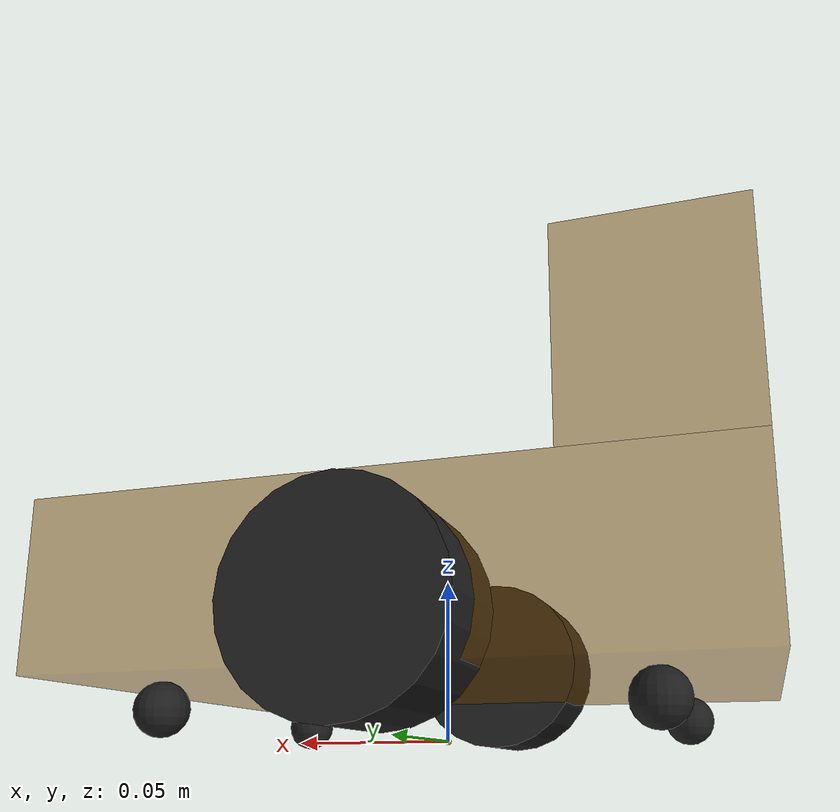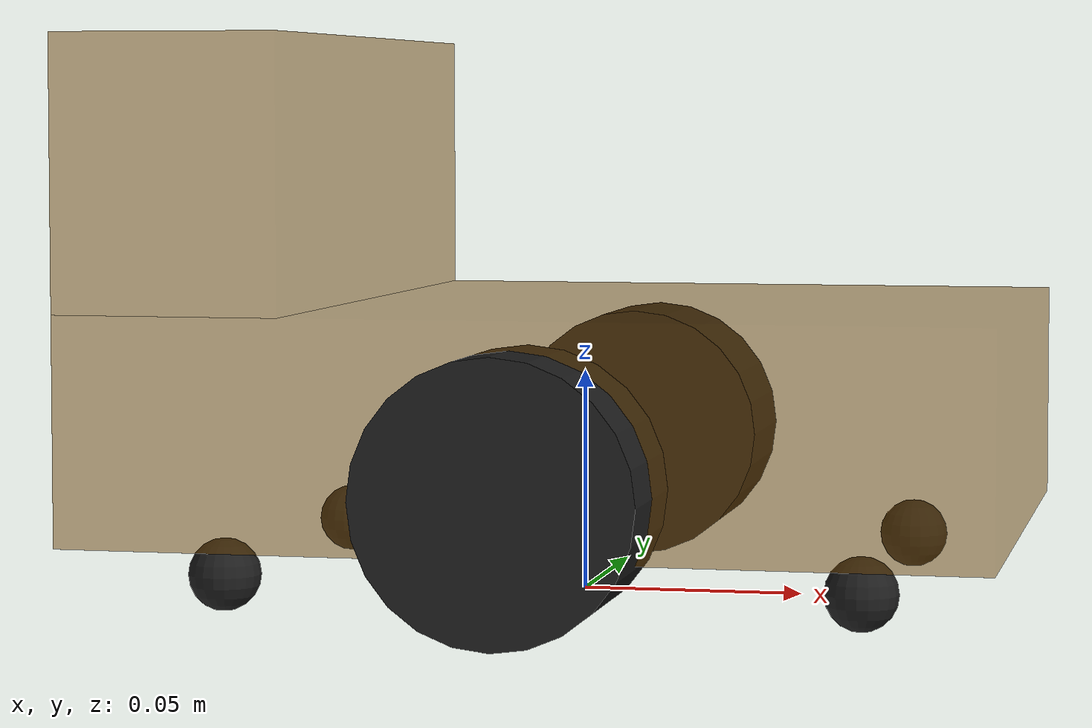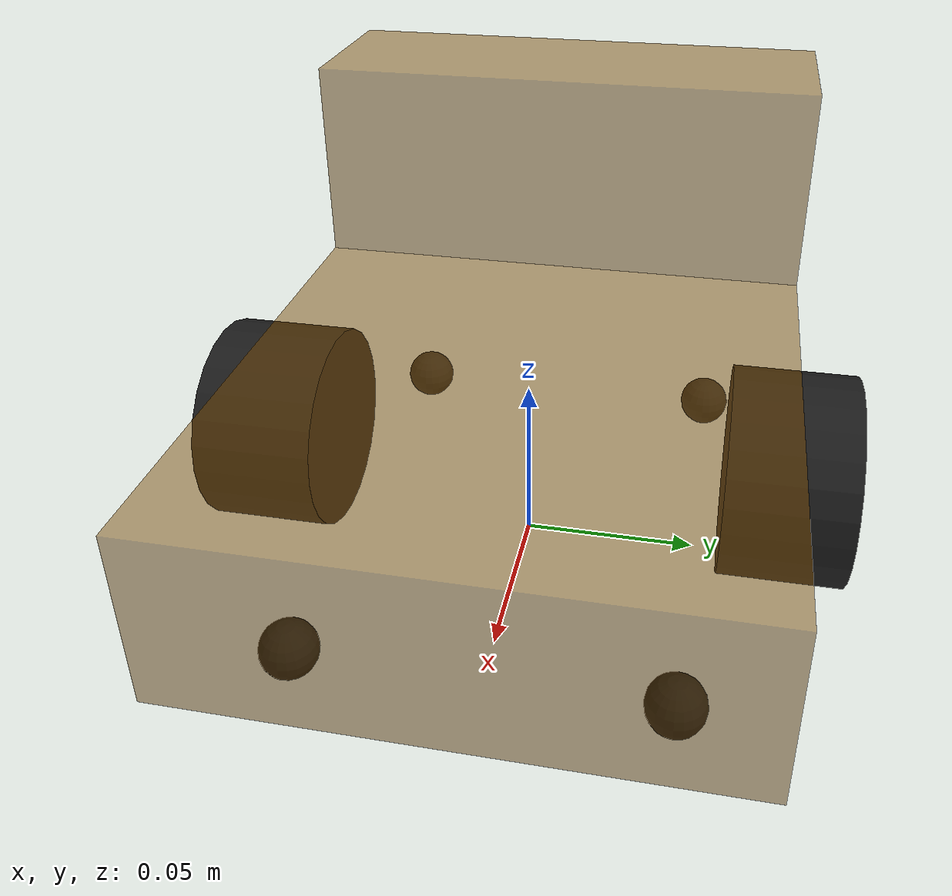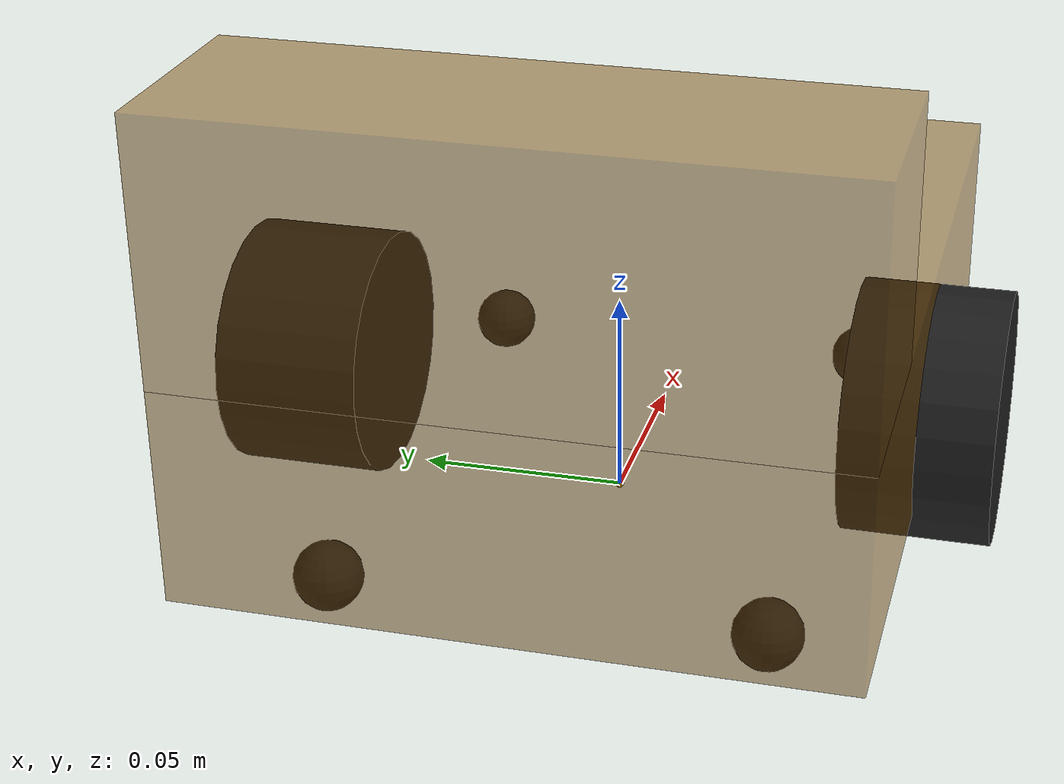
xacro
<robot name="my_base" xmlns:xacro="http://www.ros.org/wiki/xacro">
    <xacro:property name="PI" value="3.14159"/>
    <xacro:property name="base_footprint_radius" value="0.001" />
    <xacro:property name="base_link_l" value="0.2" />
    <xacro:property name="base_link_w" value="0.15" />
    <xacro:property name="base_link_h" value="0.05" />
    <xacro:property name="heavy_link_l" value="0.05" />
    <xacro:property name="heavy_link_w" value="0.15" />
    <xacro:property name="heavy_link_h" value="0.06" />
    <xacro:property name="heavy_link_m" value="0.5" />
    <xacro:property name="earth_space" value="0.016" />
    <!-- 离地间距 -->
    <xacro:property name="base_link_m" value="1.5" />
    <!-- 底盘 -->
    <link name="base_footprint">
        <visual>
            <geometry>
                <sphere radius="${base_footprint_radius}" />
            </geometry>
        </visual>
    </link>
    <link name="base_link">
        <visual>
            <geometry>
                <box size="${base_link_l} ${base_link_w} ${base_link_h}" />
            </geometry>
            <origin xyz="0 0 0" rpy="0 0 0" />
            <material name="white">
                <color rgba="0.5 0.3 0.0 0.5" />
            </material>
        </visual>
        <collision>
            <geometry>
                <box size="${base_link_l} ${base_link_w} ${base_link_h}" />
                <origin xyz="0 0 0" rpy="0 0 0" />
            </geometry>
        </collision>
        <xacro:Box_inertial_matrix m="${base_link_m}" l="${base_link_l}" w="${base_link_w}" h="${base_link_h}" />
    </link>
    <joint name="base_link2base_footprint" type="fixed">
        <parent link="base_footprint" />
        <child link="base_link" />
        <origin xyz="0 0 ${earth_space + base_link_h / 2 }" />
    </joint>
    <gazebo reference="base_link">
        <material>Gazebo/Blue</material>
    </gazebo>
    <link name="heavy_link">
        <visual>
            <geometry>
                <box size="${heavy_link_l} ${heavy_link_w} ${heavy_link_h}" />
            </geometry>
            <origin xyz="0 0 0" rpy="0 0 0" />
            <material name="white">
                <color rgba="0.5 0.3 0.0 0.5" />
            </material>
        </visual>
        <collision>
            <geometry>
                <box size="${heavy_link_l} ${heavy_link_w} ${heavy_link_h}" />
                <origin xyz="0 0 0" rpy="0 0 0" />
            </geometry>
        </collision>
        <xacro:Box_inertial_matrix m="${heavy_link_m}" l="${heavy_link_l}" w="${heavy_link_w}" h="${heavy_link_h}" />
    </link>
    <joint name="heavy_link2base_link" type="fixed">
        <parent link="base_link" />
        <child link="heavy_link" />
        <origin xyz="${-(base_link_l / 2 -heavy_link_l/2)} 0 ${base_link_h / 2+ heavy_link_h / 2 }" />
    </joint>
    <gazebo reference="heavy_link">
        <material>Gazebo/Blue</material>
    </gazebo>
    <!-- 驱动轮 -->
    <xacro:property name="wheel_radius" value="0.03" />
    <xacro:property name="wheel_length" value="0.035" />
    <xacro:property name="wheel_m" value="0.1" />
    <xacro:macro name="add_wheels" params="name flag">
        <link name="${name}_wheel">
            <visual>
                <geometry>
                    <cylinder radius="${wheel_radius}" length="${wheel_length}" />
                </geometry>
                <origin xyz="0.0 0.0 0.0" rpy="${PI / 2} 0.0 0.0" />
                <material name="black" />
            </visual>
            <collision>
                <geometry>
                    <cylinder radius="${wheel_radius}" length="${wheel_length}" />
                </geometry>
                <origin xyz="0.0 0.0 0.0" rpy="${PI / 2} 0.0 0.0" />
            </collision>
            <xacro:cylinder_inertial_matrix m="${wheel_m}" r="${wheel_radius}" h="${wheel_length}" />
        </link>
        <joint name="${name}_wheel2base_link" type="continuous">
            <parent link="base_link" />
            <child link="${name}_wheel" />
            <origin xyz="0 ${flag * base_link_w/2} ${-(earth_space + base_link_h / 2 - wheel_radius) }" />
            <axis xyz="0 1 0" />
        </joint>
        <gazebo reference="${name}_wheel">
            <material>Gazebo/Black</material>
            <mu1>100000000</mu1>
            <mu2>100000000</mu2>
            <kp>100000000</kp>
            <kd>1</kd>
        </gazebo>
    </xacro:macro>
    <xacro:add_wheels name="left" flag="1" />
    <xacro:add_wheels name="right" flag="-1" />
    <xacro:property name="support_wheel_radius" value="0.008" />
    <xacro:property name="support_wheel_distance" value="0.03" />
    <xacro:property name="support_wheel_m" value="0.03" />
    <!-- 支撑轮宏 -->
    <xacro:macro name="add_support_wheel" params="name flag number" >
        <link name="${name}_wheel_${number}">
            <visual>
                <geometry>
                    <sphere radius="${support_wheel_radius}" />
                </geometry>
                <origin xyz="0 0 0" rpy="0 0 0" />
                <material name="black" />
            </visual>
            <collision>
                <geometry>
                    <sphere radius="${support_wheel_radius}" />
                </geometry>
                <origin xyz="0 0 0" rpy="0 0 0" />
            </collision>
            <xacro:sphere_inertial_matrix m="${support_wheel_m}" r="${support_wheel_radius}" />
        </link>
        <joint name="${name}_wheel2base_link_${number}" type="continuous">
            <parent link="base_link" />
            <child link="${name}_wheel_${number}" />
            <origin xyz="${flag * (base_link_l / 2 - support_wheel_distance)} ${-0.05*(number-1)-0.05*(number-2)} ${-(base_link_h / 2 + support_wheel_radius)}" />
            <axis xyz="1 1 1" />
        </joint>
        <gazebo reference="${name}_wheel_${number}">
            <material>Gazebo/Black</material>
            <kp>100000000</kp>
            <kd>1</kd>
        </gazebo>
    </xacro:macro>
    <xacro:add_support_wheel name="front" flag="1" number="1"/>
    <xacro:add_support_wheel name="front" flag="1" number="2"/>
    <xacro:add_support_wheel name="back" flag="-1" number="1"/>
    <xacro:add_support_wheel name="back" flag="-1" number="2"/>
</robot>
